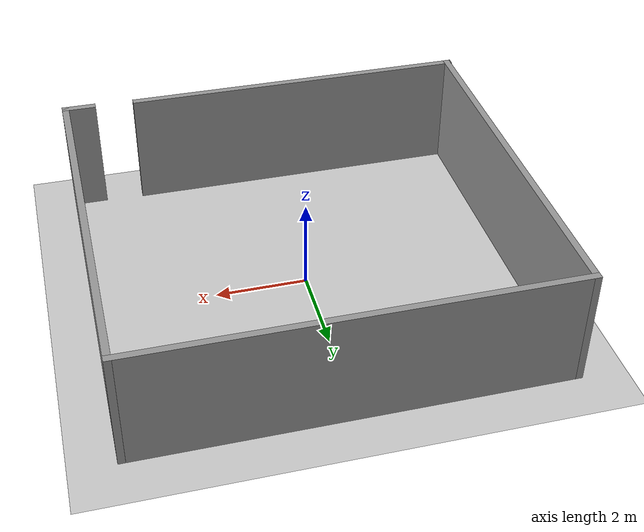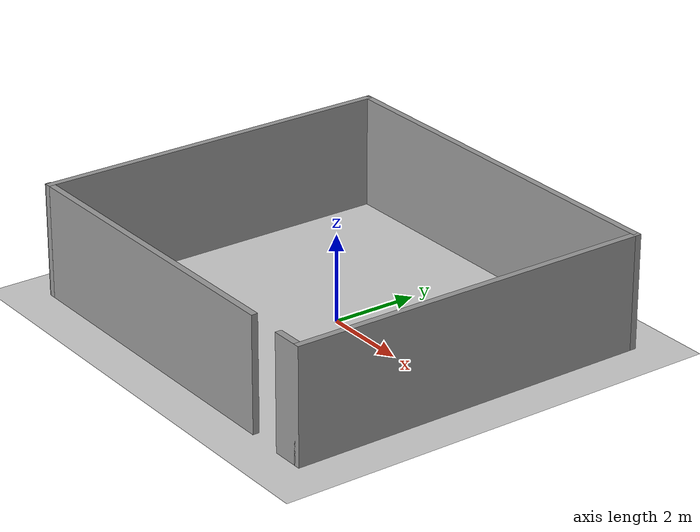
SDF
<sdf version="1.6">
 <world name="default">
  <light name="sun" type="directional">
   <pose>0 0 10 0 -0 0</pose>
   <diffuse>0.8 0.8 0.8 1</diffuse>
   <specular>0.2 0.2 0.2 1</specular>
   <attenuation>
    <range>1000</range>
    <constant>0.9</constant>
    <linear>0.01</linear>
    <quadratic>0.001</quadratic>
   </attenuation>
   <direction>-0.5 0.1 -0.9</direction>
  </light>
  <model name="ground_plane">
   <static>1</static>
   <link name="link">
    <collision name="collision">
     <geometry><plane><normal>0 0 1</normal><size>100 100</size></plane></geometry>
     <surface>
      <contact><collide_bitmask>65535</collide_bitmask></contact>
      <friction><ode><mu>100</mu><mu2>50</mu2></ode></friction>
     </surface>
    </collision>
    <visual name="visual">
     <cast_shadows>0</cast_shadows>
     <geometry><plane><normal>0 0 1</normal><size>100 100</size></plane></geometry>
     <material>
      <script><uri>file://media/materials/scripts/gazebo.material</uri><name>Gazebo/Grey</name></script>
     </material>
    </visual>
   </link>
  </model>
  <gravity>0 0 -9.8</gravity>
  <magnetic_field>6e-06 2.3e-05 -4.2e-05</magnetic_field>
  <atmosphere type="adiabatic"/>
  <physics name="default_physics" default="0" type="ode">
   <max_step_size>0.001</max_step_size>
   <real_time_factor>1</real_time_factor>
   <real_time_update_rate>1000</real_time_update_rate>
  </physics>
  <scene><ambient>0.4 0.4 0.4 1</ambient><background>0.7 0.7 0.7 1</background><shadows>1</shadows></scene>
  <audio><device>default</device></audio>
  <spherical_coordinates>
   <surface_model>EARTH_WGS84</surface_model>
   <latitude_deg>0</latitude_deg>
   <longitude_deg>0</longitude_deg>
   <elevation>0</elevation>
   <heading_deg>0</heading_deg>
  </spherical_coordinates>
  <model name="sk_building_0">
   <link name="Wall_10">
    <collision name="Wall_10_Collision">
     <geometry><box><size>7.672 0.15 2.6</size></box></geometry>
     <pose>0 0 1.3 0 -0 0</pose>
    </collision>
    <visual name="Wall_10_Visual">
     <pose>0 0 1.3 0 -0 0</pose>
     <geometry><box><size>7.672 0.15 2.6</size></box></geometry>
     <material>
      <script><uri>file://media/materials/scripts/gazebo.material</uri><name>Gazebo/Grey</name></script>
      <ambient>1 1 1 1</ambient>
     </material>
     <meta><layer>0</layer></meta>
    </visual>
    <pose>-0.799057 -4.13487 0 0 -0 0</pose>
   </link>
   <link name="Wall_6">
    <collision name="Wall_6_Collision">
     <geometry><box><size>0.75 0.15 2.6</size></box></geometry>
     <pose>0 0 1.3 0 -0 0</pose>
    </collision>
    <visual name="Wall_6_Visual">
     <pose>0 0 1.3 0 -0 0</pose>
     <geometry><box><size>0.75 0.15 2.6</size></box></geometry>
     <material>
      <script><uri>file://media/materials/scripts/gazebo.material</uri><name>Gazebo/Grey</name></script>
      <ambient>1 1 1 1</ambient>
     </material>
     <meta><layer>0</layer></meta>
    </visual>
    <pose>4.26006 -4.1751 0 0 -0 0</pose>
   </link>
   <link name="Wall_7">
    <collision name="Wall_7_Collision">
     <geometry><box><size>8.5 0.15 2.6</size></box></geometry>
     <pose>0 0 1.3 0 -0 0</pose>
    </collision>
    <visual name="Wall_7_Visual">
     <pose>0 0 1.3 0 -0 0</pose>
     <geometry><box><size>8.5 0.15 2.6</size></box></geometry>
     <material>
      <script><uri>file://media/materials/scripts/gazebo.material</uri><name>Gazebo/Grey</name></script>
      <ambient>1 1 1 1</ambient>
     </material>
     <meta><layer>0</layer></meta>
    </visual>
    <pose>4.56006 -9.8e-05 0 0 -0 1.5708</pose>
   </link>
   <link name="Wall_8">
    <collision name="Wall_8_Collision">
     <geometry><box><size>9.25 0.15 2.6</size></box></geometry>
     <pose>0 0 1.3 0 -0 0</pose>
    </collision>
    <visual name="Wall_8_Visual">
     <pose>0 0 1.3 0 -0 0</pose>
     <geometry><box><size>9.25 0.15 2.6</size></box></geometry>
     <material>
      <script><uri>file://media/materials/scripts/gazebo.material</uri><name>Gazebo/Grey</name></script>
      <ambient>1 1 1 1</ambient>
     </material>
     <meta><layer>0</layer></meta>
    </visual>
    <pose>0.010056 4.1749 0 0 -0 3.14159</pose>
   </link>
   <link name="Wall_9">
    <collision name="Wall_9_Collision">
     <geometry><box><size>8.46016 0.15 2.6</size></box></geometry>
     <pose>0 0 1.3 0 -0 0</pose>
    </collision>
    <visual name="Wall_9_Visual">
     <pose>0 0 1.3 0 -0 0</pose>
     <geometry><box><size>8.46016 0.15 2.6</size></box></geometry>
     <material>
      <script><uri>file://media/materials/scripts/gazebo.material</uri><name>Gazebo/Grey</name></script>
      <ambient>1 1 1 1</ambient>
     </material>
     <meta><layer>0</layer></meta>
    </visual>
    <pose>-4.53994 0.020016 0 0 -0 -1.5708</pose>
   </link>
   <static>1</static>
  </model>
 </world>
</sdf>
